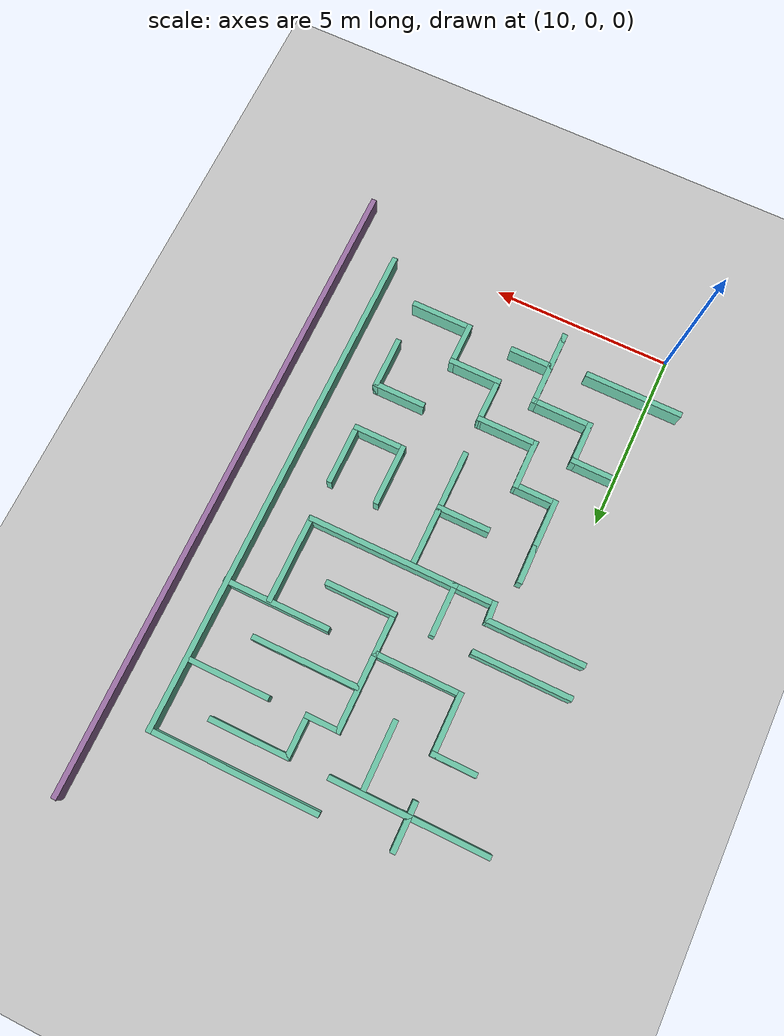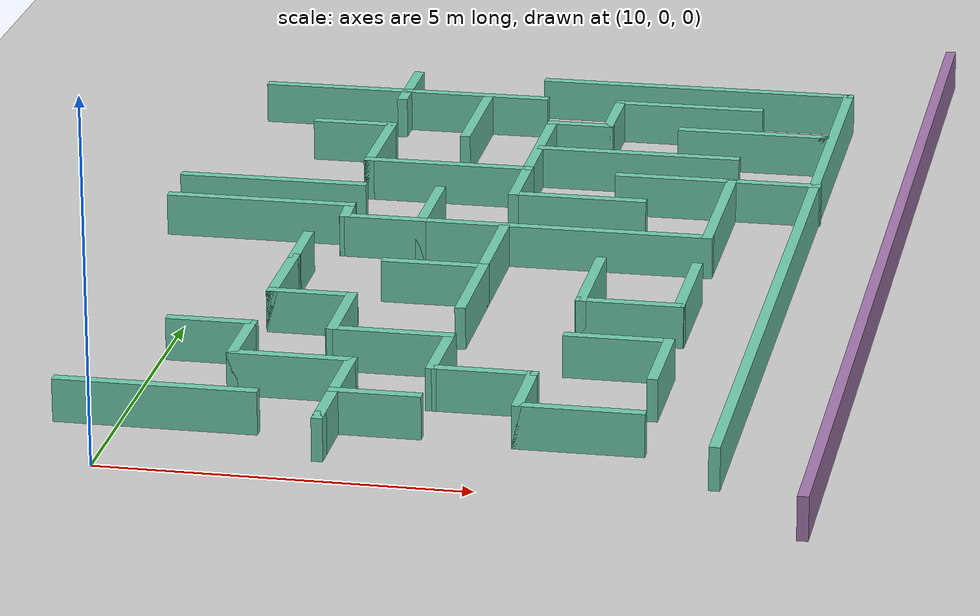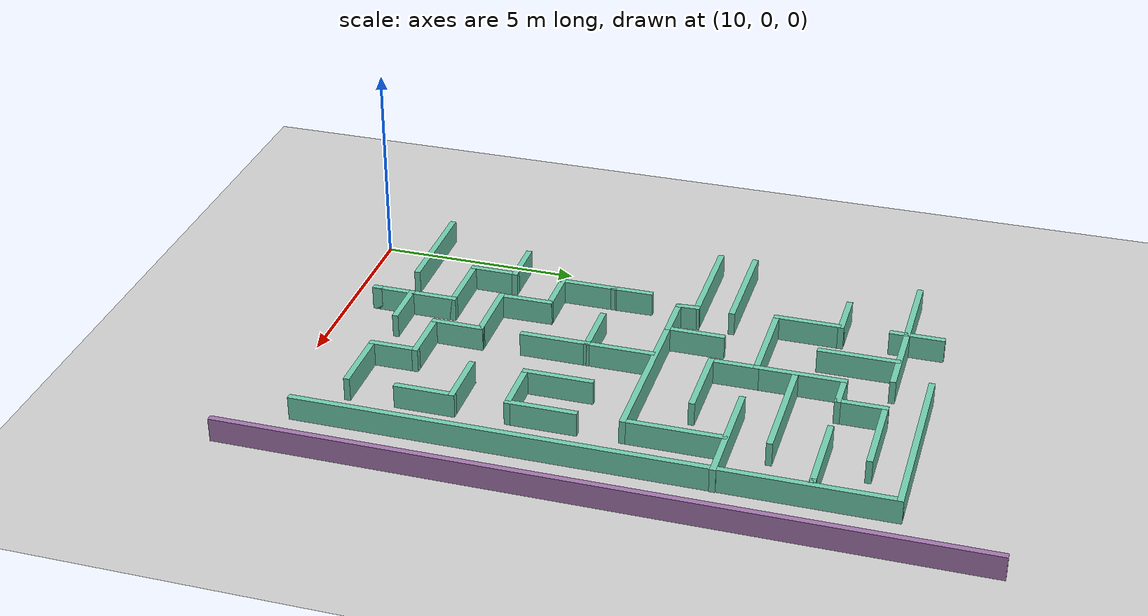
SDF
<sdf version="1.7">
 <world name="default">
  <model name="ground_plane">
   <static>1</static>
   <link name="link">
    <collision name="collision">
     <geometry><plane><normal>0 0 1</normal><size>100 100</size></plane></geometry>
     <surface><friction><ode><mu>100</mu><mu2>50</mu2></ode></friction></surface>
    </collision>
    <visual name="visual">
     <cast_shadows>0</cast_shadows>
     <geometry><plane><normal>0 0 1</normal><size>100 100</size></plane></geometry>
     <material>
      <script><uri>file://media/materials/scripts/gazebo.material</uri><name>Gazebo/Grey</name></script>
     </material>
    </visual>
   </link>
  </model>
  <model name="complicated_maze">
   <pose>-457.073 -167.601 0 0 -0 0</pose>
   <link name="Wall_111">
    <collision name="Wall_111_Collision">
     <geometry><box><size>2.25 0.15 0.6</size></box></geometry>
     <pose>0 0 0.3 0 -0 0</pose>
    </collision>
    <visual name="Wall_111_Visual">
     <pose>0 0 0.3 0 -0 0</pose>
     <geometry><box><size>2.25 0.15 0.6</size></box></geometry>
     <material>
      <script><uri>file://media/materials/scripts/gazebo.material</uri><name>Gazebo/Grey</name></script>
      <ambient>0.435294 0.796078 0.67451 1</ambient>
      <ambient>1 1 1 1</ambient>
     </material>
     <meta><layer>0</layer></meta>
    </visual>
    <pose>467.369 181.458 0 0 -0 3.14159</pose>
   </link>
   <link name="Wall_130">
    <collision name="Wall_130_Collision">
     <geometry><box><size>2.75 0.15 0.6</size></box></geometry>
     <pose>0 0 0.3 0 -0 0</pose>
    </collision>
    <visual name="Wall_130_Visual">
     <pose>0 0 0.3 0 -0 0</pose>
     <geometry><box><size>2.75 0.15 0.6</size></box></geometry>
     <material>
      <script><uri>file://media/materials/scripts/gazebo.material</uri><name>Gazebo/Grey</name></script>
      <ambient>0.435294 0.796078 0.67451 1</ambient>
      <ambient>1 1 1 1</ambient>
     </material>
     <meta><layer>0</layer></meta>
    </visual>
    <pose>467.305 177.176 0 0 -0 0</pose>
   </link>
   <link name="Wall_132">
    <collision name="Wall_132_Collision">
     <geometry><box><size>2.75 0.15 0.6</size></box></geometry>
     <pose>0 0 0.3 0 -0 0</pose>
    </collision>
    <visual name="Wall_132_Visual">
     <pose>0 0 0.3 0 -0 0</pose>
     <geometry><box><size>2.75 0.15 0.6</size></box></geometry>
     <material>
      <script><uri>file://media/materials/scripts/gazebo.material</uri><name>Gazebo/Grey</name></script>
      <ambient>0.435294 0.796078 0.67451 1</ambient>
      <ambient>1 1 1 1</ambient>
     </material>
     <meta><layer>0</layer></meta>
    </visual>
    <pose>467.326 176.287 0 0 -0 0</pose>
   </link>
   <link name="Wall_136">
    <collision name="Wall_136_Collision">
     <geometry><box><size>1.25 0.15 0.6</size></box></geometry>
     <pose>0 0 0.3 0 -0 0</pose>
    </collision>
    <visual name="Wall_136_Visual">
     <pose>0 0 0.3 0 -0 0</pose>
     <geometry><box><size>1.25 0.15 0.6</size></box></geometry>
     <material>
      <script><uri>file://media/materials/scripts/gazebo.material</uri><name>Gazebo/Grey</name></script>
      <ambient>0.435294 0.796078 0.67451 1</ambient>
      <ambient>1 1 1 1</ambient>
     </material>
     <meta><layer>0</layer></meta>
    </visual>
    <pose>469.202 175.833 0 0 -0 3.14159</pose>
   </link>
   <link name="Wall_137">
    <collision name="Wall_137_Collision">
     <geometry><box><size>0.603934 0.15 0.6</size></box></geometry>
     <pose>0 0 0.3 0 -0 0</pose>
    </collision>
    <visual name="Wall_137_Visual">
     <pose>0 0 0.3 0 -0 0</pose>
     <geometry><box><size>0.603934 0.15 0.6</size></box></geometry>
     <material>
      <script><uri>file://media/materials/scripts/gazebo.material</uri><name>Gazebo/Grey</name></script>
      <ambient>0.435294 0.796078 0.67451 1</ambient>
      <ambient>1 1 1 1</ambient>
     </material>
     <meta><layer>0</layer></meta>
    </visual>
    <pose>468.639 176.06 0 0 -0 1.62768</pose>
   </link>
   <link name="Wall_139">
    <collision name="Wall_139_Collision">
     <geometry><box><size>1.75 0.15 0.6</size></box></geometry>
     <pose>0 0 0.3 0 -0 0</pose>
    </collision>
    <visual name="Wall_139_Visual">
     <pose>0 0 0.3 0 -0 0</pose>
     <geometry><box><size>1.75 0.15 0.6</size></box></geometry>
     <material>
      <script><uri>file://media/materials/scripts/gazebo.material</uri><name>Gazebo/Grey</name></script>
      <ambient>0.435294 0.796078 0.67451 1</ambient>
      <ambient>1 1 1 1</ambient>
     </material>
     <meta><layer>0</layer></meta>
    </visual>
    <pose>473.865 173.889 0 0 -0 -1.5708</pose>
   </link>
   <link name="Wall_140">
    <collision name="Wall_140_Collision">
     <geometry><box><size>1.5 0.15 0.6</size></box></geometry>
     <pose>0 0 0.3 0 -0 0</pose>
    </collision>
    <visual name="Wall_140_Visual">
     <pose>0 0 0.3 0 -0 0</pose>
     <geometry><box><size>1.5 0.15 0.6</size></box></geometry>
     <material>
      <script><uri>file://media/materials/scripts/gazebo.material</uri><name>Gazebo/Grey</name></script>
      <ambient>0.435294 0.796078 0.67451 1</ambient>
      <ambient>1 1 1 1</ambient>
     </material>
     <meta><layer>0</layer></meta>
    </visual>
    <pose>473.19 173.089 0 0 -0 3.14159</pose>
   </link>
   <link name="Wall_141">
    <collision name="Wall_141_Collision">
     <geometry><box><size>1.75 0.15 0.6</size></box></geometry>
     <pose>0 0 0.3 0 -0 0</pose>
    </collision>
    <visual name="Wall_141_Visual">
     <pose>0 0 0.3 0 -0 0</pose>
     <geometry><box><size>1.75 0.15 0.6</size></box></geometry>
     <material>
      <script><uri>file://media/materials/scripts/gazebo.material</uri><name>Gazebo/Grey</name></script>
      <ambient>0.435294 0.796078 0.67451 1</ambient>
      <ambient>1 1 1 1</ambient>
     </material>
     <meta><layer>0</layer></meta>
    </visual>
    <pose>472.515 173.889 0 0 -0 1.5708</pose>
   </link>
   <link name="Wall_143">
    <collision name="Wall_143_Collision">
     <geometry><box><size>1.5 0.15 0.6</size></box></geometry>
     <pose>0 0 0.3 0 -0 0</pose>
    </collision>
    <visual name="Wall_143_Visual">
     <pose>0 0 0.3 0 -0 0</pose>
     <geometry><box><size>1.5 0.15 0.6</size></box></geometry>
     <material>
      <script><uri>file://media/materials/scripts/gazebo.material</uri><name>Gazebo/Grey</name></script>
      <ambient>0.435294 0.796078 0.67451 1</ambient>
      <ambient>1 1 1 1</ambient>
     </material>
     <meta><layer>0</layer></meta>
    </visual>
    <pose>473.25 171.758 0 0 -0 0</pose>
   </link>
   <link name="Wall_144">
    <collision name="Wall_144_Collision">
     <geometry><box><size>1.5 0.15 0.6</size></box></geometry>
     <pose>0 0 0.3 0 -0 0</pose>
    </collision>
    <visual name="Wall_144_Visual">
     <pose>0 0 0.3 0 -0 0</pose>
     <geometry><box><size>1.5 0.15 0.6</size></box></geometry>
     <material>
      <script><uri>file://media/materials/scripts/gazebo.material</uri><name>Gazebo/Grey</name></script>
      <ambient>0.435294 0.796078 0.67451 1</ambient>
      <ambient>1 1 1 1</ambient>
     </material>
     <meta><layer>0</layer></meta>
    </visual>
    <pose>473.925 171.083 0 0 -0 -1.5708</pose>
   </link>
   <link name="Wall_147">
    <collision name="Wall_147_Collision">
     <geometry><box><size>1.75 0.15 0.6</size></box></geometry>
     <pose>0 0 0.3 0 -0 0</pose>
    </collision>
    <visual name="Wall_147_Visual">
     <pose>0 0 0.3 0 -0 0</pose>
     <geometry><box><size>1.75 0.15 0.6</size></box></geometry>
     <material>
      <script><uri>file://media/materials/scripts/gazebo.material</uri><name>Gazebo/Grey</name></script>
      <ambient>0.435294 0.796078 0.67451 1</ambient>
      <ambient>1 1 1 1</ambient>
     </material>
     <meta><layer>0</layer></meta>
    </visual>
    <pose>473.149 169.177 0 0 -0 3.14159</pose>
   </link>
   <link name="Wall_148">
    <collision name="Wall_148_Collision">
     <geometry><box><size>1.25 0.15 0.6</size></box></geometry>
     <pose>0 0 0.3 0 -0 0</pose>
    </collision>
    <visual name="Wall_148_Visual">
     <pose>0 0 0.3 0 -0 0</pose>
     <geometry><box><size>1.25 0.15 0.6</size></box></geometry>
     <material>
      <script><uri>file://media/materials/scripts/gazebo.material</uri><name>Gazebo/Grey</name></script>
      <ambient>0.435294 0.796078 0.67451 1</ambient>
      <ambient>1 1 1 1</ambient>
     </material>
     <meta><layer>0</layer></meta>
    </visual>
    <pose>472.349 169.727 0 0 -0 1.5708</pose>
   </link>
   <link name="Wall_149">
    <collision name="Wall_149_Collision">
     <geometry><box><size>1.5 0.15 0.6</size></box></geometry>
     <pose>0 0 0.3 0 -0 0</pose>
    </collision>
    <visual name="Wall_149_Visual">
     <pose>0 0 0.3 0 -0 0</pose>
     <geometry><box><size>1.5 0.15 0.6</size></box></geometry>
     <material>
      <script><uri>file://media/materials/scripts/gazebo.material</uri><name>Gazebo/Grey</name></script>
      <ambient>0.435294 0.796078 0.67451 1</ambient>
      <ambient>1 1 1 1</ambient>
     </material>
     <meta><layer>0</layer></meta>
    </visual>
    <pose>471.674 170.277 0 0 -0 3.14159</pose>
   </link>
   <link name="Wall_150">
    <collision name="Wall_150_Collision">
     <geometry><box><size>1.33389 0.15 0.6</size></box></geometry>
     <pose>0 0 0.3 0 -0 0</pose>
    </collision>
    <visual name="Wall_150_Visual">
     <pose>0 0 0.3 0 -0 0</pose>
     <geometry><box><size>1.33389 0.15 0.6</size></box></geometry>
     <material>
      <script><uri>file://media/materials/scripts/gazebo.material</uri><name>Gazebo/Grey</name></script>
      <ambient>0.435294 0.796078 0.67451 1</ambient>
      <ambient>1 1 1 1</ambient>
     </material>
     <meta><layer>0</layer></meta>
    </visual>
    <pose>471.006 170.869 0 0 -0 1.56</pose>
   </link>
   <link name="Wall_151">
    <collision name="Wall_151_Collision">
     <geometry><box><size>1.75 0.15 0.6</size></box></geometry>
     <pose>0 0 0.3 0 -0 0</pose>
    </collision>
    <visual name="Wall_151_Visual">
     <pose>0 0 0.3 0 -0 0</pose>
     <geometry><box><size>1.75 0.15 0.6</size></box></geometry>
     <material>
      <script><uri>file://media/materials/scripts/gazebo.material</uri><name>Gazebo/Grey</name></script>
      <ambient>0.435294 0.796078 0.67451 1</ambient>
      <ambient>1 1 1 1</ambient>
     </material>
     <meta><layer>0</layer></meta>
    </visual>
    <pose>470.199 171.461 0 0 -0 3.14159</pose>
   </link>
   <link name="Wall_152">
    <collision name="Wall_152_Collision">
     <geometry><box><size>1.41625 0.15 0.6</size></box></geometry>
     <pose>0 0 0.3 0 -0 0</pose>
    </collision>
    <visual name="Wall_152_Visual">
     <pose>0 0 0.3 0 -0 0</pose>
     <geometry><box><size>1.41625 0.15 0.6</size></box></geometry>
     <material>
      <script><uri>file://media/materials/scripts/gazebo.material</uri><name>Gazebo/Grey</name></script>
      <ambient>0.435294 0.796078 0.67451 1</ambient>
      <ambient>1 1 1 1</ambient>
     </material>
     <meta><layer>0</layer></meta>
    </visual>
    <pose>469.406 172.094 0 0 -0 1.58089</pose>
   </link>
   <link name="Wall_153">
    <collision name="Wall_153_Collision">
     <geometry><box><size>1.25 0.15 0.6</size></box></geometry>
     <pose>0 0 0.3 0 -0 0</pose>
    </collision>
    <visual name="Wall_153_Visual">
     <pose>0 0 0.3 0 -0 0</pose>
     <geometry><box><size>1.25 0.15 0.6</size></box></geometry>
     <material>
      <script><uri>file://media/materials/scripts/gazebo.material</uri><name>Gazebo/Grey</name></script>
      <ambient>0.435294 0.796078 0.67451 1</ambient>
      <ambient>1 1 1 1</ambient>
     </material>
     <meta><layer>0</layer></meta>
    </visual>
    <pose>468.849 172.727 0 0 -0 3.14159</pose>
   </link>
   <link name="Wall_154">
    <collision name="Wall_154_Collision">
     <geometry><box><size>1.5 0.15 0.6</size></box></geometry>
     <pose>0 0 0.3 0 -0 0</pose>
    </collision>
    <visual name="Wall_154_Visual">
     <pose>0 0 0.3 0 -0 0</pose>
     <geometry><box><size>1.5 0.15 0.6</size></box></geometry>
     <material>
      <script><uri>file://media/materials/scripts/gazebo.material</uri><name>Gazebo/Grey</name></script>
      <ambient>0.435294 0.796078 0.67451 1</ambient>
      <ambient>1 1 1 1</ambient>
     </material>
     <meta><layer>0</layer></meta>
    </visual>
    <pose>468.299 173.402 0 0 -0 1.5708</pose>
   </link>
   <link name="Wall_158">
    <collision name="Wall_158_Collision">
     <geometry><box><size>1.07287 0.15 0.6</size></box></geometry>
     <pose>0 0 0.3 0 -0 0</pose>
    </collision>
    <visual name="Wall_158_Visual">
     <pose>0 0 0.3 0 -0 0</pose>
     <geometry><box><size>1.07287 0.15 0.6</size></box></geometry>
     <material>
      <script><uri>file://media/materials/scripts/gazebo.material</uri><name>Gazebo/Grey</name></script>
      <ambient>0.435294 0.796078 0.67451 1</ambient>
      <ambient>1 1 1 1</ambient>
     </material>
     <meta><layer>0</layer></meta>
    </visual>
    <pose>468.294 174.539 0 0 -0 -1.55921</pose>
   </link>
   <link name="Wall_163">
    <collision name="Wall_163_Collision">
     <geometry><box><size>1.5 0.15 0.6</size></box></geometry>
     <pose>0 0 0.3 0 -0 0</pose>
    </collision>
    <visual name="Wall_163_Visual">
     <pose>0 0 0.3 0 -0 0</pose>
     <geometry><box><size>1.5 0.15 0.6</size></box></geometry>
     <material>
      <script><uri>file://media/materials/scripts/gazebo.material</uri><name>Gazebo/Grey</name></script>
      <ambient>0.435294 0.796078 0.67451 1</ambient>
      <ambient>1 1 1 1</ambient>
     </material>
     <meta><layer>0</layer></meta>
    </visual>
    <pose>470.282 174.142 0 0 -0 0</pose>
   </link>
   <link name="Wall_164">
    <collision name="Wall_164_Collision">
     <geometry><box><size>1.75 0.15 0.6</size></box></geometry>
     <pose>0 0 0.3 0 -0 0</pose>
    </collision>
    <visual name="Wall_164_Visual">
     <pose>0 0 0.3 0 -0 0</pose>
     <geometry><box><size>1.75 0.15 0.6</size></box></geometry>
     <material>
      <script><uri>file://media/materials/scripts/gazebo.material</uri><name>Gazebo/Grey</name></script>
      <ambient>0.435294 0.796078 0.67451 1</ambient>
      <ambient>1 1 1 1</ambient>
     </material>
     <meta><layer>0</layer></meta>
    </visual>
    <pose>470.957 174.942 0 0 -0 1.5708</pose>
   </link>
   <link name="Wall_166">
    <collision name="Wall_166_Collision">
     <geometry><box><size>1.75 0.15 0.6</size></box></geometry>
     <pose>0 0 0.3 0 -0 0</pose>
    </collision>
    <visual name="Wall_166_Visual">
     <pose>0 0 0.3 0 -0 0</pose>
     <geometry><box><size>1.75 0.15 0.6</size></box></geometry>
     <material>
      <script><uri>file://media/materials/scripts/gazebo.material</uri><name>Gazebo/Grey</name></script>
      <ambient>0.435294 0.796078 0.67451 1</ambient>
      <ambient>1 1 1 1</ambient>
     </material>
     <meta><layer>0</layer></meta>
    </visual>
    <pose>470.957 173.342 0 0 -0 -1.5708</pose>
   </link>
   <link name="Wall_168">
    <collision name="Wall_168_Collision">
     <geometry><box><size>1.25 0.15 0.6</size></box></geometry>
     <pose>0 0 0.3 0 -0 0</pose>
    </collision>
    <visual name="Wall_168_Visual">
     <pose>0 0 0.3 0 -0 0</pose>
     <geometry><box><size>1.25 0.15 0.6</size></box></geometry>
     <material>
      <script><uri>file://media/materials/scripts/gazebo.material</uri><name>Gazebo/Grey</name></script>
      <ambient>0.435294 0.796078 0.67451 1</ambient>
      <ambient>1 1 1 1</ambient>
     </material>
     <meta><layer>0</layer></meta>
    </visual>
    <pose>470.446 169.268 0 0 -0 3.14159</pose>
   </link>
   <link name="Wall_169">
    <collision name="Wall_169_Collision">
     <geometry><box><size>1.25 0.15 0.6</size></box></geometry>
     <pose>0 0 0.3 0 -0 0</pose>
    </collision>
    <visual name="Wall_169_Visual">
     <pose>0 0 0.3 0 -0 0</pose>
     <geometry><box><size>1.25 0.15 0.6</size></box></geometry>
     <material>
      <script><uri>file://media/materials/scripts/gazebo.material</uri><name>Gazebo/Grey</name></script>
      <ambient>0.435294 0.796078 0.67451 1</ambient>
      <ambient>1 1 1 1</ambient>
     </material>
     <meta><layer>0</layer></meta>
    </visual>
    <pose>469.896 169.818 0 0 -0 1.5708</pose>
   </link>
   <link name="Wall_170">
    <collision name="Wall_170_Collision">
     <geometry><box><size>1.75 0.15 0.6</size></box></geometry>
     <pose>0 0 0.3 0 -0 0</pose>
    </collision>
    <visual name="Wall_170_Visual">
     <pose>0 0 0.3 0 -0 0</pose>
     <geometry><box><size>1.75 0.15 0.6</size></box></geometry>
     <material>
      <script><uri>file://media/materials/scripts/gazebo.material</uri><name>Gazebo/Grey</name></script>
      <ambient>0.435294 0.796078 0.67451 1</ambient>
      <ambient>1 1 1 1</ambient>
     </material>
     <meta><layer>0</layer></meta>
    </visual>
    <pose>469.096 170.368 0 0 -0 3.14159</pose>
   </link>
   <link name="Wall_171">
    <collision name="Wall_171_Collision">
     <geometry><box><size>1.25 0.15 0.6</size></box></geometry>
     <pose>0 0 0.3 0 -0 0</pose>
    </collision>
    <visual name="Wall_171_Visual">
     <pose>0 0 0.3 0 -0 0</pose>
     <geometry><box><size>1.25 0.15 0.6</size></box></geometry>
     <material>
      <script><uri>file://media/materials/scripts/gazebo.material</uri><name>Gazebo/Grey</name></script>
      <ambient>0.435294 0.796078 0.67451 1</ambient>
      <ambient>1 1 1 1</ambient>
     </material>
     <meta><layer>0</layer></meta>
    </visual>
    <pose>468.296 170.918 0 0 -0 1.5708</pose>
   </link>
   <link name="Wall_172">
    <collision name="Wall_172_Collision">
     <geometry><box><size>1.25 0.15 0.6</size></box></geometry>
     <pose>0 0 0.3 0 -0 0</pose>
    </collision>
    <visual name="Wall_172_Visual">
     <pose>0 0 0.3 0 -0 0</pose>
     <geometry><box><size>1.25 0.15 0.6</size></box></geometry>
     <material>
      <script><uri>file://media/materials/scripts/gazebo.material</uri><name>Gazebo/Grey</name></script>
      <ambient>0.435294 0.796078 0.67451 1</ambient>
      <ambient>1 1 1 1</ambient>
     </material>
     <meta><layer>0</layer></meta>
    </visual>
    <pose>467.746 171.468 0 0 -0 3.14159</pose>
   </link>
   <link name="Wall_177">
    <collision name="Wall_177_Collision">
     <geometry><box><size>1 0.15 0.6</size></box></geometry>
     <pose>0 0 0.3 0 -0 0</pose>
    </collision>
    <visual name="Wall_177_Visual">
     <pose>0 0 0.3 0 -0 0</pose>
     <geometry><box><size>1 0.15 0.6</size></box></geometry>
     <material>
      <script><uri>file://media/materials/scripts/gazebo.material</uri><name>Gazebo/Grey</name></script>
      <ambient>0.435294 0.796078 0.67451 1</ambient>
      <ambient>1 1 1 1</ambient>
     </material>
     <meta><layer>0</layer></meta>
    </visual>
    <pose>469.896 168.843 0 0 -0 -1.5708</pose>
   </link>
   <link name="Wall_178">
    <collision name="Wall_178_Collision">
     <geometry><box><size>0.25 0.15 0.6</size></box></geometry>
     <pose>0 0 0.3 0 -0 0</pose>
    </collision>
    <visual name="Wall_178_Visual">
     <pose>0 0 0.3 0 -0 0</pose>
     <geometry><box><size>0.25 0.15 0.6</size></box></geometry>
     <material>
      <script><uri>file://media/materials/scripts/gazebo.material</uri><name>Gazebo/Grey</name></script>
      <ambient>0.435294 0.796078 0.67451 1</ambient>
      <ambient>1 1 1 1</ambient>
     </material>
     <meta><layer>0</layer></meta>
    </visual>
    <pose>469.896 168.368 0 0 -0 -1.5708</pose>
   </link>
   <link name="Wall_18">
    <collision name="Wall_18_Collision">
     <geometry><box><size>18 0.15 0.6</size></box></geometry>
     <pose>0 0 0.3 0 -0 0</pose>
    </collision>
    <visual name="Wall_18_Visual">
     <pose>0 0 0.3 0 -0 0</pose>
     <geometry><box><size>18 0.15 0.6</size></box></geometry>
     <material>
      <script><uri>file://media/materials/scripts/gazebo.material</uri><name>Gazebo/Grey</name></script>
      <ambient>0.635294 0.46078 0.67451 1</ambient>
     </material>
     <meta><layer>0</layer></meta>
    </visual>
    <pose>476.367 175.782 0 0 -0 1.5708</pose>
   </link>
   <link name="Wall_189">
    <collision name="Wall_189_Collision">
     <geometry><box><size>2.75 0.15 0.6</size></box></geometry>
     <pose>0 0 0.3 0 -0 0</pose>
    </collision>
    <visual name="Wall_189_Visual">
     <pose>0 0 0.3 0 -0 0</pose>
     <geometry><box><size>2.75 0.15 0.6</size></box></geometry>
     <material>
      <script><uri>file://media/materials/scripts/gazebo.material</uri><name>Gazebo/Grey</name></script>
      <ambient>0.435294 0.796078 0.67451 1</ambient>
      <ambient>1 1 1 1</ambient>
     </material>
     <meta><layer>0</layer></meta>
    </visual>
    <pose>467.565 169.057 0 0 -0 0</pose>
   </link>
   <link name="Wall_29">
    <collision name="Wall_29_Collision">
     <geometry><box><size>4.75 0.15 0.6</size></box></geometry>
     <pose>0 0 0.3 0 -0 0</pose>
    </collision>
    <visual name="Wall_29_Visual">
     <pose>0 0 0.3 0 -0 0</pose>
     <geometry><box><size>4.75 0.15 0.6</size></box></geometry>
     <material>
      <script><uri>file://media/materials/scripts/gazebo.material</uri><name>Gazebo/Grey</name></script>
      <ambient>0.435294 0.796078 0.67451 1</ambient>
      <ambient>1 1 1 1</ambient>
     </material>
     <meta><layer>0</layer></meta>
    </visual>
    <pose>472.76 182.343 0 0 -0 0</pose>
   </link>
   <link name="Wall_30">
    <collision name="Wall_30_Collision">
     <geometry><box><size>14.25 0.15 0.6</size></box></geometry>
     <pose>0 0 0.3 0 -0 0</pose>
    </collision>
    <visual name="Wall_30_Visual">
     <pose>0 0 0.3 0 -0 0</pose>
     <geometry><box><size>14.25 0.15 0.6</size></box></geometry>
     <material>
      <script><uri>file://media/materials/scripts/gazebo.material</uri><name>Gazebo/Grey</name></script>
      <ambient>0.435294 0.796078 0.67451 1</ambient>
      <ambient>1 1 1 1</ambient>
     </material>
     <meta><layer>0</layer></meta>
    </visual>
    <pose>475.06 175.293 0 0 -0 -1.5708</pose>
   </link>
   <link name="Wall_34">
    <collision name="Wall_34_Collision">
     <geometry><box><size>1 0.15 0.6</size></box></geometry>
     <pose>0 0 0.3 0 -0 0</pose>
    </collision>
    <visual name="Wall_34_Visual">
     <pose>0 0 0.3 0 -0 0</pose>
     <geometry><box><size>1 0.15 0.6</size></box></geometry>
     <material>
      <script><uri>file://media/materials/scripts/gazebo.material</uri><name>Gazebo/Grey</name></script>
      <ambient>0.435294 0.796078 0.67451 1</ambient>
      <ambient>1 1 1 1</ambient>
     </material>
     <meta><layer>0</layer></meta>
    </visual>
    <pose>468.419 181.883 0 0 -0 -1.5708</pose>
   </link>
   <link name="Wall_35">
    <collision name="Wall_35_Collision">
     <geometry><box><size>2.25 0.15 0.6</size></box></geometry>
     <pose>0 0 0.3 0 -0 0</pose>
    </collision>
    <visual name="Wall_35_Visual">
     <pose>0 0 0.3 0 -0 0</pose>
     <geometry><box><size>2.25 0.15 0.6</size></box></geometry>
     <material>
      <script><uri>file://media/materials/scripts/gazebo.material</uri><name>Gazebo/Grey</name></script>
      <ambient>0.435294 0.796078 0.67451 1</ambient>
      <ambient>1 1 1 1</ambient>
     </material>
     <meta><layer>0</layer></meta>
    </visual>
    <pose>469.469 181.458 0 0 -0 0</pose>
   </link>
   <link name="Wall_37">
    <collision name="Wall_37_Collision">
     <geometry><box><size>0.5 0.15 0.6</size></box></geometry>
     <pose>0 0 0.3 0 -0 0</pose>
    </collision>
    <visual name="Wall_37_Visual">
     <pose>0 0 0.3 0 -0 0</pose>
     <geometry><box><size>0.5 0.15 0.6</size></box></geometry>
     <material>
      <script><uri>file://media/materials/scripts/gazebo.material</uri><name>Gazebo/Grey</name></script>
      <ambient>0.435294 0.796078 0.67451 1</ambient>
      <ambient>1 1 1 1</ambient>
     </material>
     <meta><layer>0</layer></meta>
    </visual>
    <pose>468.419 181.283 0 0 -0 -1.5708</pose>
   </link>
   <link name="Wall_39">
    <collision name="Wall_39_Collision">
     <geometry><box><size>2 0.15 0.6</size></box></geometry>
     <pose>0 0 0.3 0 -0 0</pose>
    </collision>
    <visual name="Wall_39_Visual">
     <pose>0 0 0.3 0 -0 0</pose>
     <geometry><box><size>2 0.15 0.6</size></box></geometry>
     <material>
      <script><uri>file://media/materials/scripts/gazebo.material</uri><name>Gazebo/Grey</name></script>
      <ambient>0.435294 0.796078 0.67451 1</ambient>
      <ambient>1 1 1 1</ambient>
     </material>
     <meta><layer>0</layer></meta>
    </visual>
    <pose>469.68 180.501 0 0 -0 -1.5708</pose>
   </link>
   <link name="Wall_41">
    <collision name="Wall_41_Collision">
     <geometry><box><size>2.25 0.15 0.6</size></box></geometry>
     <pose>0 0 0.3 0 -0 0</pose>
    </collision>
    <visual name="Wall_41_Visual">
     <pose>0 0 0.3 0 -0 0</pose>
     <geometry><box><size>2.25 0.15 0.6</size></box></geometry>
     <material>
      <script><uri>file://media/materials/scripts/gazebo.material</uri><name>Gazebo/Grey</name></script>
      <ambient>0.435294 0.796078 0.67451 1</ambient>
      <ambient>1 1 1 1</ambient>
     </material>
     <meta><layer>0</layer></meta>
    </visual>
    <pose>472.747 181.466 0 0 -0 0</pose>
   </link>
   <link name="Wall_45">
    <collision name="Wall_45_Collision">
     <geometry><box><size>1.25 0.15 0.6</size></box></geometry>
     <pose>0 0 0.3 0 -0 0</pose>
    </collision>
    <visual name="Wall_45_Visual">
     <pose>0 0 0.3 0 -0 0</pose>
     <geometry><box><size>1.25 0.15 0.6</size></box></geometry>
     <material>
      <script><uri>file://media/materials/scripts/gazebo.material</uri><name>Gazebo/Grey</name></script>
      <ambient>0.435294 0.796078 0.67451 1</ambient>
      <ambient>1 1 1 1</ambient>
     </material>
     <meta><layer>0</layer></meta>
    </visual>
    <pose>471.697 180.916 0 0 -0 -1.5708</pose>
   </link>
   <link name="Wall_46">
    <collision name="Wall_46_Collision">
     <geometry><box><size>1 0.15 0.6</size></box></geometry>
     <pose>0 0 0.3 0 -0 0</pose>
    </collision>
    <visual name="Wall_46_Visual">
     <pose>0 0 0.3 0 -0 0</pose>
     <geometry><box><size>1 0.15 0.6</size></box></geometry>
     <material>
      <script><uri>file://media/materials/scripts/gazebo.material</uri><name>Gazebo/Grey</name></script>
      <ambient>0.435294 0.796078 0.67451 1</ambient>
      <ambient>1 1 1 1</ambient>
     </material>
     <meta><layer>0</layer></meta>
    </visual>
    <pose>471.272 180.366 0 0 -0 3.14159</pose>
   </link>
   <link name="Wall_47">
    <collision name="Wall_47_Collision">
     <geometry><box><size>2.25 0.15 0.6</size></box></geometry>
     <pose>0 0 0.3 0 -0 0</pose>
    </collision>
    <visual name="Wall_47_Visual">
     <pose>0 0 0.3 0 -0 0</pose>
     <geometry><box><size>2.25 0.15 0.6</size></box></geometry>
     <material>
      <script><uri>file://media/materials/scripts/gazebo.material</uri><name>Gazebo/Grey</name></script>
      <ambient>0.435294 0.796078 0.67451 1</ambient>
      <ambient>1 1 1 1</ambient>
     </material>
     <meta><layer>0</layer></meta>
    </visual>
    <pose>470.847 179.316 0 0 -0 -1.5708</pose>
   </link>
   <link name="Wall_48">
    <collision name="Wall_48_Collision">
     <geometry><box><size>2.5 0.15 0.6</size></box></geometry>
     <pose>0 0 0.3 0 -0 0</pose>
    </collision>
    <visual name="Wall_48_Visual">
     <pose>0 0 0.3 0 -0 0</pose>
     <geometry><box><size>2.5 0.15 0.6</size></box></geometry>
     <material>
      <script><uri>file://media/materials/scripts/gazebo.material</uri><name>Gazebo/Grey</name></script>
      <ambient>0.435294 0.796078 0.67451 1</ambient>
      <ambient>1 1 1 1</ambient>
     </material>
     <meta><layer>0</layer></meta>
    </visual>
    <pose>469.672 178.266 0 0 -0 3.14159</pose>
   </link>
   <link name="Wall_49">
    <collision name="Wall_49_Collision">
     <geometry><box><size>1.75 0.15 0.6</size></box></geometry>
     <pose>0 0 0.3 0 -0 0</pose>
    </collision>
    <visual name="Wall_49_Visual">
     <pose>0 0 0.3 0 -0 0</pose>
     <geometry><box><size>1.75 0.15 0.6</size></box></geometry>
     <material>
      <script><uri>file://media/materials/scripts/gazebo.material</uri><name>Gazebo/Grey</name></script>
      <ambient>0.435294 0.796078 0.67451 1</ambient>
      <ambient>1 1 1 1</ambient>
     </material>
     <meta><layer>0</layer></meta>
    </visual>
    <pose>468.497 179.066 0 0 -0 1.5708</pose>
   </link>
   <link name="Wall_50">
    <collision name="Wall_50_Collision">
     <geometry><box><size>1.25 0.15 0.6</size></box></geometry>
     <pose>0 0 0.3 0 -0 0</pose>
    </collision>
    <visual name="Wall_50_Visual">
     <pose>0 0 0.3 0 -0 0</pose>
     <geometry><box><size>1.25 0.15 0.6</size></box></geometry>
     <material>
      <script><uri>file://media/materials/scripts/gazebo.material</uri><name>Gazebo/Grey</name></script>
      <ambient>0.435294 0.796078 0.67451 1</ambient>
      <ambient>1 1 1 1</ambient>
     </material>
     <meta><layer>0</layer></meta>
    </visual>
    <pose>467.947 179.866 0 0 -0 3.14159</pose>
   </link>
   <link name="Wall_54">
    <collision name="Wall_54_Collision">
     <geometry><box><size>2.25 0.15 0.6</size></box></geometry>
     <pose>0 0 0.3 0 -0 0</pose>
    </collision>
    <visual name="Wall_54_Visual">
     <pose>0 0 0.3 0 -0 0</pose>
     <geometry><box><size>2.25 0.15 0.6</size></box></geometry>
     <material>
      <script><uri>file://media/materials/scripts/gazebo.material</uri><name>Gazebo/Grey</name></script>
      <ambient>0.435294 0.796078 0.67451 1</ambient>
      <ambient>1 1 1 1</ambient>
     </material>
     <meta><layer>0</layer></meta>
    </visual>
    <pose>473.874 180.398 0 0 -0 0</pose>
   </link>
   <link name="Wall_55">
    <collision name="Wall_55_Collision">
     <geometry><box><size>0.15 0.15 0.6</size></box></geometry>
     <pose>0 0 0.3 0 -0 0</pose>
    </collision>
    <visual name="Wall_55_Visual">
     <pose>0 0 0.3 0 -0 0</pose>
     <geometry><box><size>0.15 0.15 0.6</size></box></geometry>
     <material>
      <script><uri>file://media/materials/scripts/gazebo.material</uri><name>Gazebo/Grey</name></script>
      <ambient>0.435294 0.796078 0.67451 1</ambient>
      <ambient>1 1 1 1</ambient>
     </material>
     <meta><layer>0</layer></meta>
    </visual>
    <pose>474.924 180.398 0 0 -0 0</pose>
   </link>
   <link name="Wall_57">
    <collision name="Wall_57_Collision">
     <geometry><box><size>3 0.15 0.6</size></box></geometry>
     <pose>0 0 0.3 0 -0 0</pose>
    </collision>
    <visual name="Wall_57_Visual">
     <pose>0 0 0.3 0 -0 0</pose>
     <geometry><box><size>3 0.15 0.6</size></box></geometry>
     <material>
      <script><uri>file://media/materials/scripts/gazebo.material</uri><name>Gazebo/Grey</name></script>
      <ambient>0.435294 0.796078 0.67451 1</ambient>
      <ambient>1 1 1 1</ambient>
     </material>
     <meta><layer>0</layer></meta>
    </visual>
    <pose>472.331 179.212 0 0 -0 0</pose>
   </link>
   <link name="Wall_59">
    <collision name="Wall_59_Collision">
     <geometry><box><size>3 0.15 0.6</size></box></geometry>
     <pose>0 0 0.3 0 -0 0</pose>
    </collision>
    <visual name="Wall_59_Visual">
     <pose>0 0 0.3 0 -0 0</pose>
     <geometry><box><size>3 0.15 0.6</size></box></geometry>
     <material>
      <script><uri>file://media/materials/scripts/gazebo.material</uri><name>Gazebo/Grey</name></script>
      <ambient>0.435294 0.796078 0.67451 1</ambient>
      <ambient>1 1 1 1</ambient>
     </material>
     <meta><layer>0</layer></meta>
    </visual>
    <pose>473.653 178.223 0 0 -0 3.14159</pose>
   </link>
   <link name="Wall_61">
    <collision name="Wall_61_Collision">
     <geometry><box><size>1.25 0.15 0.6</size></box></geometry>
     <pose>0 0 0.3 0 -0 0</pose>
    </collision>
    <visual name="Wall_61_Visual">
     <pose>0 0 0.3 0 -0 0</pose>
     <geometry><box><size>1.25 0.15 0.6</size></box></geometry>
     <material>
      <script><uri>file://media/materials/scripts/gazebo.material</uri><name>Gazebo/Grey</name></script>
      <ambient>0.435294 0.796078 0.67451 1</ambient>
      <ambient>1 1 1 1</ambient>
     </material>
     <meta><layer>0</layer></meta>
    </visual>
    <pose>470.847 177.716 0 0 -0 -1.5708</pose>
   </link>
   <link name="Wall_62">
    <collision name="Wall_62_Collision">
     <geometry><box><size>2 0.15 0.6</size></box></geometry>
     <pose>0 0 0.3 0 -0 0</pose>
    </collision>
    <visual name="Wall_62_Visual">
     <pose>0 0 0.3 0 -0 0</pose>
     <geometry><box><size>2 0.15 0.6</size></box></geometry>
     <material>
      <script><uri>file://media/materials/scripts/gazebo.material</uri><name>Gazebo/Grey</name></script>
      <ambient>0.435294 0.796078 0.67451 1</ambient>
      <ambient>1 1 1 1</ambient>
     </material>
     <meta><layer>0</layer></meta>
    </visual>
    <pose>471.772 177.166 0 0 -0 0</pose>
   </link>
   <link name="Wall_64">
    <collision name="Wall_64_Collision">
     <geometry><box><size>2.5 0.15 0.6</size></box></geometry>
     <pose>0 0 0.3 0 -0 0</pose>
    </collision>
    <visual name="Wall_64_Visual">
     <pose>0 0 0.3 0 -0 0</pose>
     <geometry><box><size>2.5 0.15 0.6</size></box></geometry>
     <material>
      <script><uri>file://media/materials/scripts/gazebo.material</uri><name>Gazebo/Grey</name></script>
      <ambient>0.435294 0.796078 0.67451 1</ambient>
      <ambient>1 1 1 1</ambient>
     </material>
     <meta><layer>0</layer></meta>
    </visual>
    <pose>473.852 177.008 0 0 -0 -1.5708</pose>
   </link>
   <link name="Wall_65">
    <collision name="Wall_65_Collision">
     <geometry><box><size>4.25 0.15 0.6</size></box></geometry>
     <pose>0 0 0.3 0 -0 0</pose>
    </collision>
    <visual name="Wall_65_Visual">
     <pose>0 0 0.3 0 -0 0</pose>
     <geometry><box><size>4.25 0.15 0.6</size></box></geometry>
     <material>
      <script><uri>file://media/materials/scripts/gazebo.material</uri><name>Gazebo/Grey</name></script>
      <ambient>0.435294 0.796078 0.67451 1</ambient>
      <ambient>1 1 1 1</ambient>
     </material>
     <meta><layer>0</layer></meta>
    </visual>
    <pose>471.802 175.833 0 0 -0 3.14159</pose>
   </link>
   <link name="Wall_66">
    <collision name="Wall_66_Collision">
     <geometry><box><size>1.5 0.15 0.6</size></box></geometry>
     <pose>0 0 0.3 0 -0 0</pose>
    </collision>
    <visual name="Wall_66_Visual">
     <pose>0 0 0.3 0 -0 0</pose>
     <geometry><box><size>1.5 0.15 0.6</size></box></geometry>
     <material>
      <script><uri>file://media/materials/scripts/gazebo.material</uri><name>Gazebo/Grey</name></script>
      <ambient>0.435294 0.796078 0.67451 1</ambient>
      <ambient>1 1 1 1</ambient>
     </material>
     <meta><layer>0</layer></meta>
    </visual>
    <pose>469.752 176.508 0 0 -0 1.5708</pose>
   </link>
   <static>1</static>
  </model>
 </world>
</sdf>
